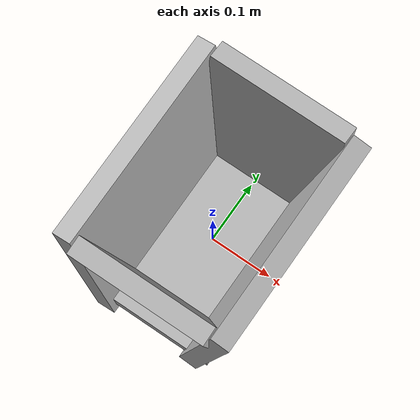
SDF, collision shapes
<?xml version="1.0"?>

<sdf version="1.6">
  <model name='trash'>
    <link name="body">
      <pose>0 0 0 0 0 0</pose>
      <kinematic>1</kinematic>
        <visual name="visual">
          <geometry>
            <mesh>
              <uri>model://trash/meshes/TrashBin.obj</uri>
              <scale>1.0 1.0 0.6</scale>
            </mesh>
          </geometry>
        </visual>

        <collision name="collision1">
          <pose>0 -0.14 0.12 0.2 0 0</pose>
          <geometry>
            <box>
              <size>0.22 0.03 0.28</size>
            </box>
          </geometry>
        </collision>

        <collision name="collision2">
          <pose>0 0.14 0.12 -0.2 0 0</pose>
          <geometry>
            <box>
              <size>0.22 0.03 0.28</size>
            </box>
          </geometry>
        </collision>

        <collision name="collision3">
          <pose>-0.10 0.0 0.12 0.0 -0.2 0</pose>
          <geometry>
            <box>
              <size>0.03 0.34 0.28</size>
            </box>
          </geometry>
        </collision>

        <collision name="collision4">
          <pose>0.10 0.0 0.12 0.0 0.2 0</pose>
          <geometry>
            <box>
              <size>0.03 0.34 0.28</size>
            </box>
          </geometry>
        </collision>

        <collision name="collision5">
          <pose>0.0 0.0 0.01 0.0 0.0 0</pose>
          <geometry>
            <box>
              <size>0.20 0.32 0.02</size>
            </box>
          </geometry>
        </collision>

    </link>
  </model>
</sdf>
